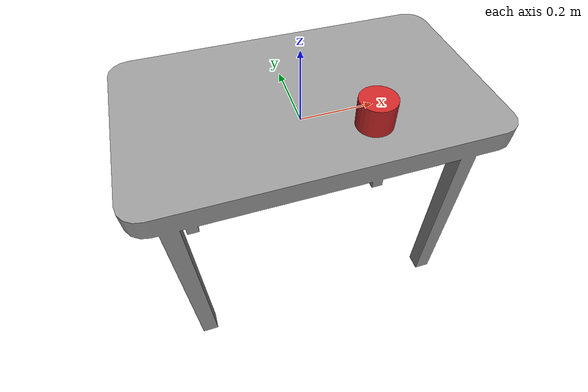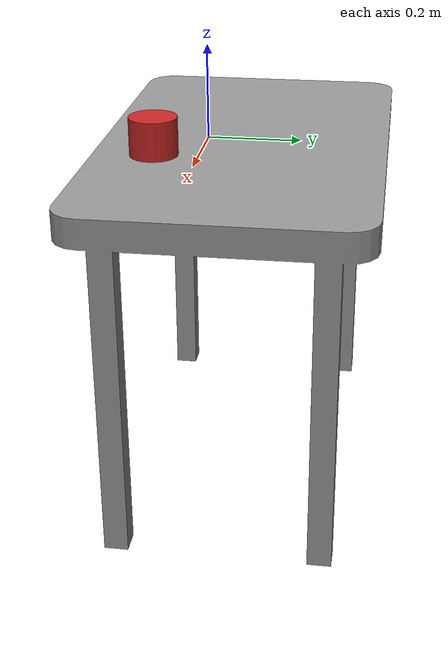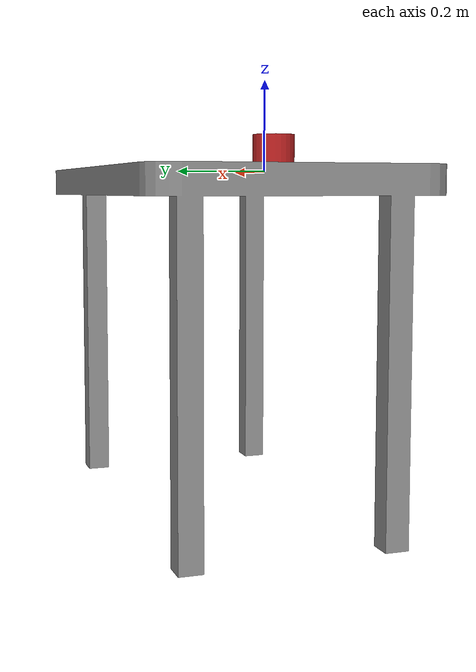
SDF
<?xml version='1.0'?>
<sdf version='1.6'>
  <model name='TableAndObject.sdf'>
    <link name='link_0'>
      <pose frame=''>-0.168596 0.085511 -0.051337 0 -0 0</pose>
      <inertial>
        <mass>1</mass>
        <inertia>
          <ixx>0.166667</ixx>
          <ixy>0</ixy>
          <ixz>0</ixz>
          <iyy>0.166667</iyy>
          <iyz>0</iyz>
          <izz>0.166667</izz>
        </inertia>
      </inertial>
      <visual name='visual'>
        <pose frame=''>0 0 0 0 -0 0</pose>
        <geometry>
          <mesh>
            <uri>/home/rishabh1b/ROS808X/catkin_ws2/src/robotarm_description/meshes/Table.STL</uri>
            <scale>1 1 1</scale>
          </mesh>
        </geometry>
        <material>
          <lighting>1</lighting>
          <script>
            <uri>file://media/materials/scripts/gazebo.material</uri>
            <name>Gazebo/Grey</name>
          </script>
          <ambient>0.3 0.3 0.3 1</ambient>
          <diffuse>0.7 0.7 0.7 1</diffuse>
          <specular>0.01 0.01 0.01 1</specular>
          <emissive>0 0 0 1</emissive>
        </material>
        <cast_shadows>1</cast_shadows>
        <transparency>0</transparency>
      </visual>
      <collision name='collision'>
        <laser_retro>0</laser_retro>
        <max_contacts>10</max_contacts>
        <pose frame=''>0 0 0 0 -0 0</pose>
        <geometry>
          <mesh>
            <uri>/home/rishabh1b/ROS808X/catkin_ws2/src/robotarm_description/meshes/Table.STL</uri>
          </mesh>
        </geometry>
        <surface>
          <friction>
            <ode>
              <mu>1</mu>
              <mu2>1</mu2>
              <fdir1>0 0 0</fdir1>
              <slip1>0</slip1>
              <slip2>0</slip2>
            </ode>
            <torsional>
              <coefficient>1</coefficient>
              <patch_radius>0</patch_radius>
              <surface_radius>0</surface_radius>
              <use_patch_radius>1</use_patch_radius>
              <ode>
                <slip>0</slip>
              </ode>
            </torsional>
          </friction>
          <bounce>
            <restitution_coefficient>0</restitution_coefficient>
            <threshold>1e+06</threshold>
          </bounce>
          <contact>
            <collide_without_contact>0</collide_without_contact>
            <collide_without_contact_bitmask>1</collide_without_contact_bitmask>
            <collide_bitmask>1</collide_bitmask>
            <ode>
              <soft_cfm>0</soft_cfm>
              <soft_erp>0.2</soft_erp>
              <kp>1e+13</kp>
              <kd>1</kd>
              <max_vel>0.01</max_vel>
              <min_depth>0</min_depth>
            </ode>
            <bullet>
              <split_impulse>1</split_impulse>
              <split_impulse_penetration_threshold>-0.01</split_impulse_penetration_threshold>
              <soft_cfm>0</soft_cfm>
              <soft_erp>0.2</soft_erp>
              <kp>1e+13</kp>
              <kd>1</kd>
            </bullet>
          </contact>
        </surface>
      </collision>
    </link>
    <link name='link_1'>
      <pose frame=''>0.168596 -0.085511 0.051337 0 -0 0</pose>
      <inertial>
        <mass>1</mass>
        <inertia>
          <ixx>0.145833</ixx>
          <ixy>0</ixy>
          <ixz>0</ixz>
          <iyy>0.145833</iyy>
          <iyz>0</iyz>
          <izz>0.125</izz>
        </inertia>
        <pose frame=''>0 0 0 0 -0 0</pose>
      </inertial>
      <gravity>1</gravity>
      <self_collide>0</self_collide>
      <kinematic>0</kinematic>
      <visual name='visual'>
        <pose frame=''>0 0 0 0 -0 0</pose>
        <geometry>
          <cylinder>
            <radius>0.05</radius>
            <length>0.08</length>
          </cylinder>
        </geometry>
        <material>
          <lighting>1</lighting>
          <script>
            <uri>file://media/materials/scripts/gazebo.material</uri>
            <name>Gazebo/Red</name>
          </script>
          <ambient>0.3 0.3 0.3 1</ambient>
          <diffuse>0.7 0.7 0.7 1</diffuse>
          <specular>0.01 0.01 0.01 1</specular>
          <emissive>0 0 0 1</emissive>
          <shader type='vertex'>
            <normal_map>__default__</normal_map>
          </shader>
        </material>
        <cast_shadows>1</cast_shadows>
        <transparency>0</transparency>
      </visual>
      <collision name='collision'>
        <laser_retro>0</laser_retro>
        <max_contacts>10</max_contacts>
        <pose frame=''>0 0 0 0 -0 0</pose>
        <geometry>
          <cylinder>
            <radius>0.5</radius>
            <length>1</length>
          </cylinder>
        </geometry>
        <surface>
          <friction>
            <ode>
              <mu>1</mu>
              <mu2>1</mu2>
              <fdir1>0 0 0</fdir1>
              <slip1>0</slip1>
              <slip2>0</slip2>
            </ode>
            <torsional>
              <coefficient>1</coefficient>
              <patch_radius>0</patch_radius>
              <surface_radius>0</surface_radius>
              <use_patch_radius>1</use_patch_radius>
              <ode>
                <slip>0</slip>
              </ode>
            </torsional>
          </friction>
          <bounce>
            <restitution_coefficient>0</restitution_coefficient>
            <threshold>1e+06</threshold>
          </bounce>
          <contact>
            <collide_without_contact>0</collide_without_contact>
            <collide_without_contact_bitmask>1</collide_without_contact_bitmask>
            <collide_bitmask>1</collide_bitmask>
            <ode>
              <soft_cfm>0</soft_cfm>
              <soft_erp>0.2</soft_erp>
              <kp>1e+13</kp>
              <kd>1</kd>
              <max_vel>0.01</max_vel>
              <min_depth>0</min_depth>
            </ode>
            <bullet>
              <split_impulse>1</split_impulse>
              <split_impulse_penetration_threshold>-0.01</split_impulse_penetration_threshold>
              <soft_cfm>0</soft_cfm>
              <soft_erp>0.2</soft_erp>
              <kp>1e+13</kp>
              <kd>1</kd>
            </bullet>
          </contact>
        </surface>
      </collision>
    </link>
    <static>0</static>
    <allow_auto_disable>1</allow_auto_disable>
  </model>
</sdf>
